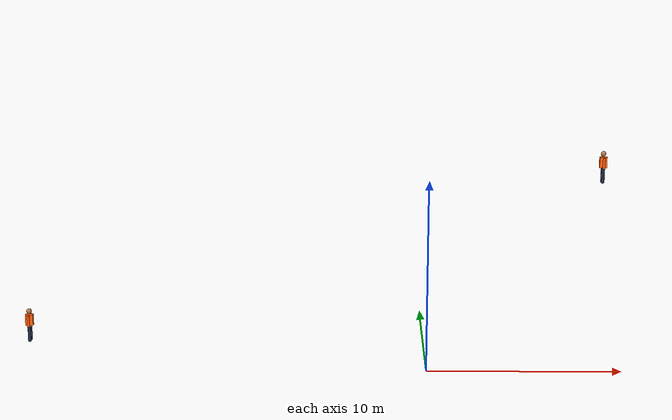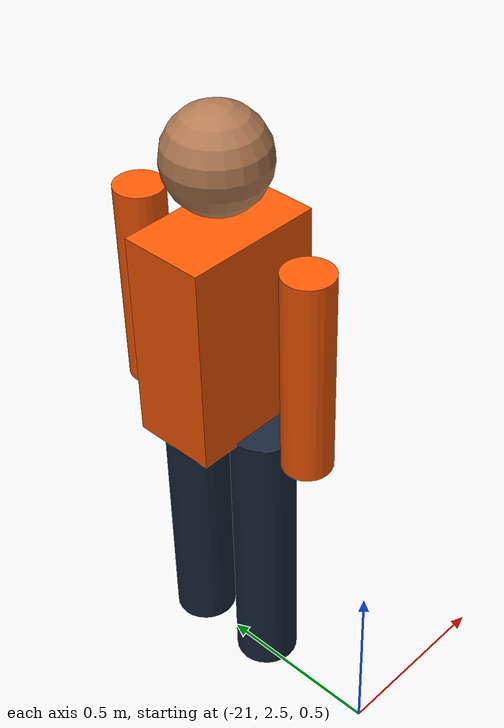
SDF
<sdf version="1.9">
 <world name="vigil_new_mining">
  <physics name="physics" type="ignored">
   <max_step_size>0.002</max_step_size>
   <real_time_factor>1</real_time_factor>
  </physics>
  <gravity>0 0 -9.81</gravity>
  <plugin filename="gz-sim-physics-system" name="gz::sim::systems::Physics"/>
  <plugin filename="gz-sim-user-commands-system" name="gz::sim::systems::UserCommands"/>
  <plugin filename="gz-sim-scene-broadcaster-system" name="gz::sim::systems::SceneBroadcaster"/>
  <plugin filename="gz-sim-imu-system" name="gz::sim::systems::Imu"/>
  <plugin filename="gz-sim-contact-system" name="gz::sim::systems::Contact"/>
  <plugin filename="gz-sim-sensors-system" name="gz::sim::systems::Sensors">
   <render_engine>ogre2</render_engine>
  </plugin>
  <scene>
   <ambient>0.35 0.35 0.35 1</ambient>
   <background>0.03 0.035 0.04 1</background>
   <shadows>true</shadows>
  </scene>
  <light name="inspection_light" type="directional">
   <pose>0 0 30 0 0 0</pose>
   <diffuse>0.65 0.65 0.65 1</diffuse>
   <direction>0.2 0.3 -1</direction>
  </light>
  <model name="human_1">
   <static>true</static>
   <pose>-21.0 3.0 0.537 0 0 0</pose>
   <link name="body">
    <visual name="torso">
     <pose>0 0 1.15 0 0 0</pose>
     <geometry><box><size>0.40 0.24 0.6</size></box></geometry>
     <material><diffuse>1 0.35 0.02 1</diffuse><ambient>1 0.35 0.02 1</ambient></material>
     <plugin filename="gz-sim-thermal-system" name="gz::sim::systems::Thermal">
      <temperature>309</temperature>
     </plugin>
    </visual>
    <collision name="torso">
     <pose>0 0 1.15 0 0 0</pose>
     <geometry><box><size>0.40 0.24 0.6</size></box></geometry>
    </collision>
    <visual name="head">
     <pose>0 0 1.63 0 0 0</pose>
     <geometry><sphere><radius>0.14</radius></sphere></geometry>
     <material><diffuse>0.7 0.48 0.32 1</diffuse><ambient>0.7 0.48 0.32 1</ambient></material>
     <plugin filename="gz-sim-thermal-system" name="gz::sim::systems::Thermal">
      <temperature>309</temperature>
     </plugin>
    </visual>
    <collision name="head">
     <pose>0 0 1.63 0 0 0</pose>
     <geometry><sphere><radius>0.14</radius></sphere></geometry>
    </collision>
    <visual name="left_leg">
     <pose>0 0.13 0.43 0 0 0</pose>
     <geometry><cylinder><radius>0.09</radius><length>0.86</length></cylinder></geometry>
     <material><diffuse>0.1 0.15 0.23 1</diffuse><ambient>0.1 0.15 0.23 1</ambient></material>
     <plugin filename="gz-sim-thermal-system" name="gz::sim::systems::Thermal">
      <temperature>309</temperature>
     </plugin>
    </visual>
    <collision name="left_leg">
     <pose>0 0.13 0.43 0 0 0</pose>
     <geometry><cylinder><radius>0.09</radius><length>0.86</length></cylinder></geometry>
    </collision>
    <visual name="right_leg">
     <pose>0 -0.13 0.43 0 0 0</pose>
     <geometry><cylinder><radius>0.09</radius><length>0.86</length></cylinder></geometry>
     <material><diffuse>0.1 0.15 0.23 1</diffuse><ambient>0.1 0.15 0.23 1</ambient></material>
     <plugin filename="gz-sim-thermal-system" name="gz::sim::systems::Thermal">
      <temperature>309</temperature>
     </plugin>
    </visual>
    <collision name="right_leg">
     <pose>0 -0.13 0.43 0 0 0</pose>
     <geometry><cylinder><radius>0.09</radius><length>0.86</length></cylinder></geometry>
    </collision>
    <visual name="left_arm">
     <pose>0 0.29 1.14 0 0 0</pose>
     <geometry><cylinder><radius>0.07</radius><length>0.6</length></cylinder></geometry>
     <material><diffuse>1 0.35 0.02 1</diffuse><ambient>1 0.35 0.02 1</ambient></material>
     <plugin filename="gz-sim-thermal-system" name="gz::sim::systems::Thermal">
      <temperature>309</temperature>
     </plugin>
    </visual>
    <collision name="left_arm">
     <pose>0 0.29 1.14 0 0 0</pose>
     <geometry><cylinder><radius>0.07</radius><length>0.6</length></cylinder></geometry>
    </collision>
    <visual name="right_arm">
     <pose>0 -0.29 1.14 0 0 0</pose>
     <geometry><cylinder><radius>0.07</radius><length>0.6</length></cylinder></geometry>
     <material><diffuse>1 0.35 0.02 1</diffuse><ambient>1 0.35 0.02 1</ambient></material>
     <plugin filename="gz-sim-thermal-system" name="gz::sim::systems::Thermal">
      <temperature>309</temperature>
     </plugin>
    </visual>
    <collision name="right_arm">
     <pose>0 -0.29 1.14 0 0 0</pose>
     <geometry><cylinder><radius>0.07</radius><length>0.6</length></cylinder></geometry>
    </collision>
   </link>
  </model>
  <model name="human_2">
   <static>true</static>
   <pose>10.0 9.0 7.858 0 0 0</pose>
   <link name="body">
    <visual name="torso">
     <pose>0 0 1.15 0 0 0</pose>
     <geometry><box><size>0.40 0.24 0.6</size></box></geometry>
     <material><diffuse>1 0.35 0.02 1</diffuse><ambient>1 0.35 0.02 1</ambient></material>
     <plugin filename="gz-sim-thermal-system" name="gz::sim::systems::Thermal">
      <temperature>309</temperature>
     </plugin>
    </visual>
    <collision name="torso">
     <pose>0 0 1.15 0 0 0</pose>
     <geometry><box><size>0.40 0.24 0.6</size></box></geometry>
    </collision>
    <visual name="head">
     <pose>0 0 1.63 0 0 0</pose>
     <geometry><sphere><radius>0.14</radius></sphere></geometry>
     <material><diffuse>0.7 0.48 0.32 1</diffuse><ambient>0.7 0.48 0.32 1</ambient></material>
     <plugin filename="gz-sim-thermal-system" name="gz::sim::systems::Thermal">
      <temperature>309</temperature>
     </plugin>
    </visual>
    <collision name="head">
     <pose>0 0 1.63 0 0 0</pose>
     <geometry><sphere><radius>0.14</radius></sphere></geometry>
    </collision>
    <visual name="left_leg">
     <pose>0 0.13 0.43 0 0 0</pose>
     <geometry><cylinder><radius>0.09</radius><length>0.86</length></cylinder></geometry>
     <material><diffuse>0.1 0.15 0.23 1</diffuse><ambient>0.1 0.15 0.23 1</ambient></material>
     <plugin filename="gz-sim-thermal-system" name="gz::sim::systems::Thermal">
      <temperature>309</temperature>
     </plugin>
    </visual>
    <collision name="left_leg">
     <pose>0 0.13 0.43 0 0 0</pose>
     <geometry><cylinder><radius>0.09</radius><length>0.86</length></cylinder></geometry>
    </collision>
    <visual name="right_leg">
     <pose>0 -0.13 0.43 0 0 0</pose>
     <geometry><cylinder><radius>0.09</radius><length>0.86</length></cylinder></geometry>
     <material><diffuse>0.1 0.15 0.23 1</diffuse><ambient>0.1 0.15 0.23 1</ambient></material>
     <plugin filename="gz-sim-thermal-system" name="gz::sim::systems::Thermal">
      <temperature>309</temperature>
     </plugin>
    </visual>
    <collision name="right_leg">
     <pose>0 -0.13 0.43 0 0 0</pose>
     <geometry><cylinder><radius>0.09</radius><length>0.86</length></cylinder></geometry>
    </collision>
    <visual name="left_arm">
     <pose>0 0.29 1.14 0 0 0</pose>
     <geometry><cylinder><radius>0.07</radius><length>0.6</length></cylinder></geometry>
     <material><diffuse>1 0.35 0.02 1</diffuse><ambient>1 0.35 0.02 1</ambient></material>
     <plugin filename="gz-sim-thermal-system" name="gz::sim::systems::Thermal">
      <temperature>309</temperature>
     </plugin>
    </visual>
    <collision name="left_arm">
     <pose>0 0.29 1.14 0 0 0</pose>
     <geometry><cylinder><radius>0.07</radius><length>0.6</length></cylinder></geometry>
    </collision>
    <visual name="right_arm">
     <pose>0 -0.29 1.14 0 0 0</pose>
     <geometry><cylinder><radius>0.07</radius><length>0.6</length></cylinder></geometry>
     <material><diffuse>1 0.35 0.02 1</diffuse><ambient>1 0.35 0.02 1</ambient></material>
     <plugin filename="gz-sim-thermal-system" name="gz::sim::systems::Thermal">
      <temperature>309</temperature>
     </plugin>
    </visual>
    <collision name="right_arm">
     <pose>0 -0.29 1.14 0 0 0</pose>
     <geometry><cylinder><radius>0.07</radius><length>0.6</length></cylinder></geometry>
    </collision>
   </link>
  </model>
 </world>
</sdf>
